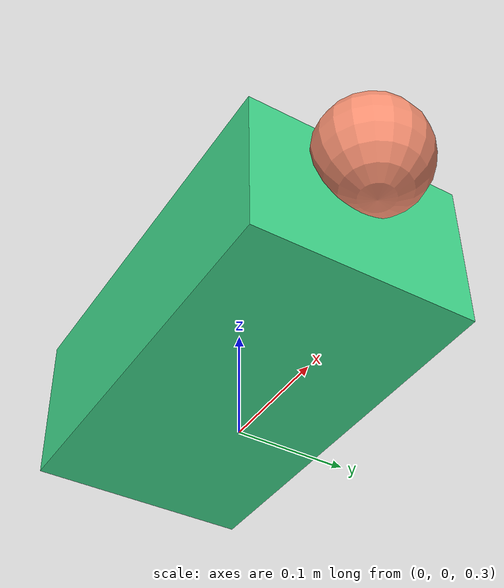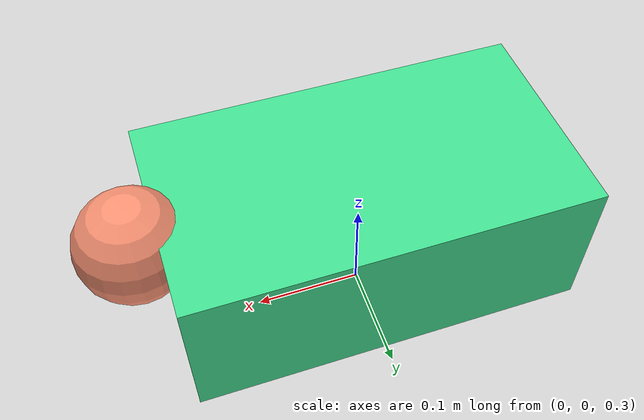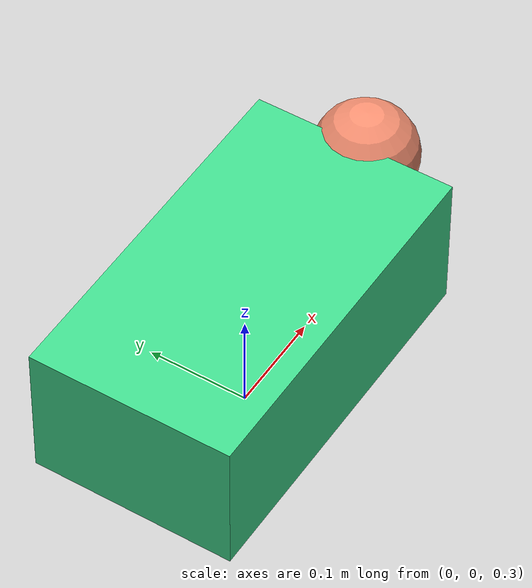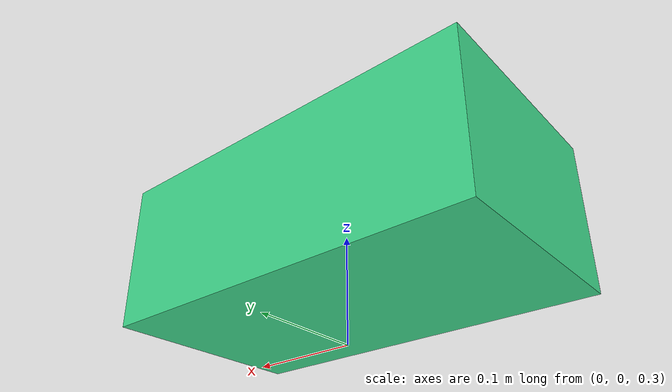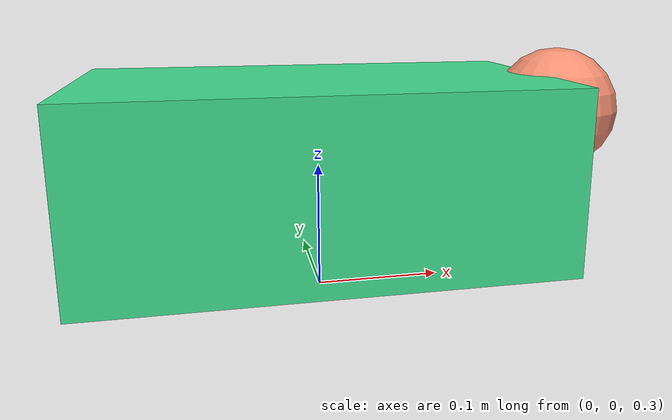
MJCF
<mujoco model="free_body">
  <option timestep="0.01" />
  <worldbody>
    <body name="robot" pos="0 0 0.4">
      <freejoint />
      <geom type="box" size="0.18 0.1 0.07" rgba="0.25 0.85 0.55 1" />
      <geom type="sphere" pos="0.2 0 0.04" size="0.05" rgba="0.96 0.56 0.44 1" />
    </body>
  </worldbody>
</mujoco>
